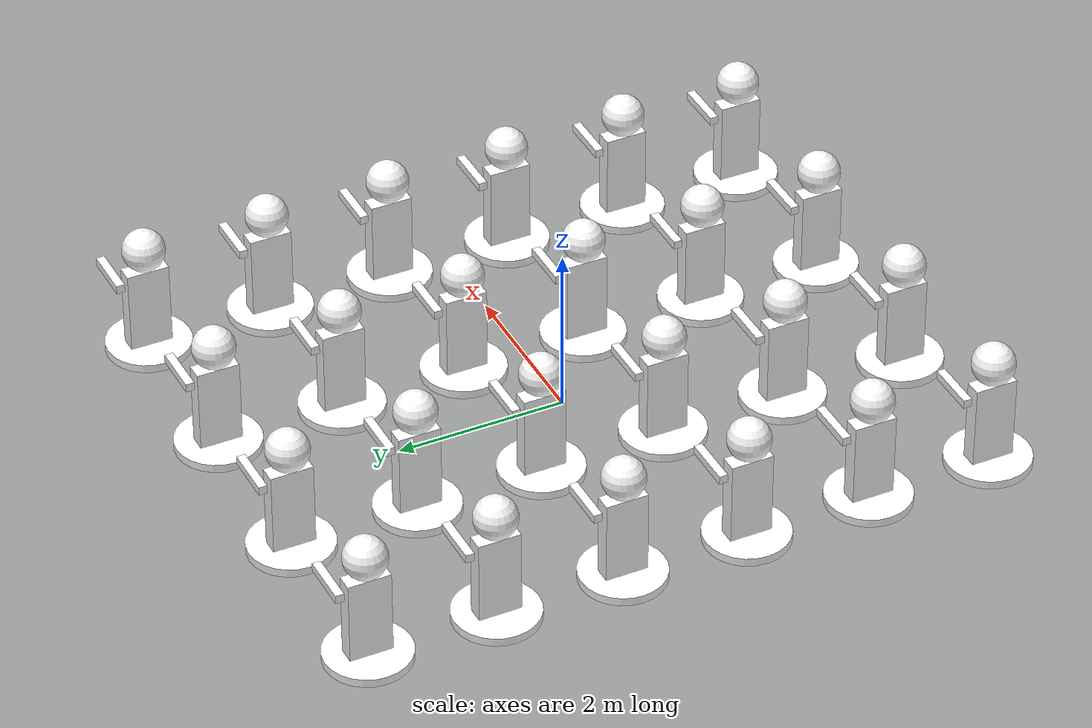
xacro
<robot xmlns:xacro="http://www.ros.org/wiki/xacro" name="team">
  <xacro:property name="x_n" value="3" />
  <xacro:property name="y_n" value="5" />
  <xacro:property name="x_k" value="2" />
  <xacro:property name="y_k" value="1.5" />
  <xacro:property name="x_b" value="${-x_k*x_n/2}" />
  <xacro:property name="y_b" value="${-y_k*y_n/2}" />

  <link name="world" />

  <xacro:include filename="$(find lecture3_xacro)/urdf/bot.urdf.xacro" />

  <xacro:macro name="bot_jointed" params="suffix xyz">
    <xacro:bot suffix="${suffix}" />
    <joint name="world_joint_${suffix}" type="fixed">
      <parent link="world" />
      <child link="base_link_${suffix}" />
      <origin xyz="${xyz}" />
    </joint>
  </xacro:macro>

  <xacro:macro name="loop_row" params="begin end x">
    <xacro:bot_jointed suffix="${x}_${begin}" xyz="${x*x_k+x_b} ${begin*y_k+y_b} 0" />
    <xacro:if value="${end-begin}">
      <xacro:loop_row begin="${begin+1}" end="${end}" x="${x}" />
    </xacro:if>
  </xacro:macro>

  <xacro:macro name="loop" params="begin end">
    <xacro:loop_row begin="0" end="${y_n}" x="${begin}" />
    <xacro:if value="${end-begin}">
      <xacro:loop begin="${begin+1}" end="${end}" />
    </xacro:if>
  </xacro:macro>

  <xacro:loop begin="0" end="${x_n}" />
</robot>

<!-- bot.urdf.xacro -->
<robot xmlns:xacro="http://www.ros.org/wiki/xacro" name="bot">
  <xacro:macro name="bot" params="suffix">
    <xacro:macro name="material_white">
      <material name="white">
        <color rgba="1 1 1 1"/>
      </material>
    </xacro:macro>

    <link name="base_link_${suffix}">
      <visual>
        <geometry>
          <cylinder length="0.1" radius="0.5" />
        </geometry>
        <origin xyz="0 0 0.05" />
        <xacro:material_white />
      </visual>
    </link>

    <link name="continuous_link_${suffix}">
      <visual>
        <geometry>
          <box size="0.2 0.5 1" />
        </geometry>
        <origin xyz="0 0 0.5" />
        <xacro:material_white />
      </visual>
    </link>

    <link name="fixed_link_${suffix}">
      <visual>
        <geometry>
          <sphere radius="0.25" />
        </geometry>
        <origin xyz="0 0 0.25" />
        <xacro:material_white />
      </visual>
    </link>

    <link name="revolute_link_${suffix}" />

    <link name="prismatic_link_${suffix}">
      <visual>
        <geometry>
          <box size="0.6 0.1 0.1" />
        </geometry>
        <origin xyz="0.3 0 0" />
        <xacro:material_white />
      </visual>
    </link>

    <joint name="continuous_joint_${suffix}" type="continuous">
      <parent link="base_link_${suffix}" />
      <child link="continuous_link_${suffix}" />
      <origin xyz="0 0 0.1" />
      <axis xyz="0 0 1" />
    </joint>

    <joint name="fixed_joint_${suffix}" type="fixed">
      <parent link="continuous_link_${suffix}" />
      <child link="fixed_link_${suffix}" />
      <origin xyz="0 0 1" />
    </joint>

    <joint name="revolute_joint_${suffix}" type="revolute">
      <parent link="continuous_link_${suffix}" />
      <child link="revolute_link_${suffix}" />
      <origin xyz="0 0.3 0.8" rpy="0 0 0" />
      <axis xyz="0 -1 0" />
      <limit lower="${radians(-90)}" upper="0" effort="1" velocity="1" />
    </joint>

    <joint name="prismatic_joint_${suffix}" type="prismatic">
      <parent link="revolute_link_${suffix}" />
      <child link="prismatic_link_${suffix}" />
      <origin xyz="0 0 0" rpy="0 0 0" />
      <limit lower="-0.3" upper="0" effort="1" velocity="1" />
    </joint>
  </xacro:macro>
</robot>
